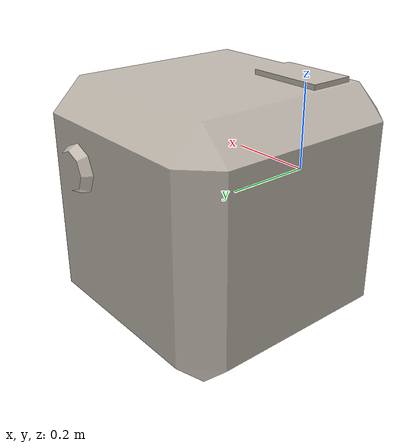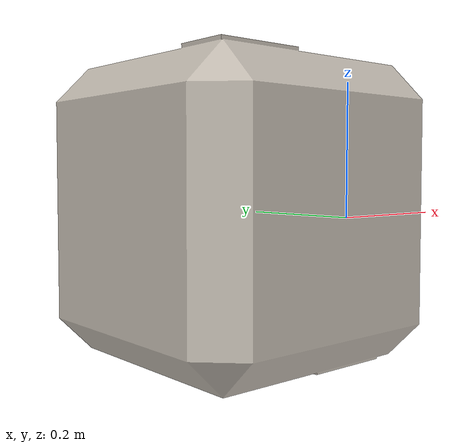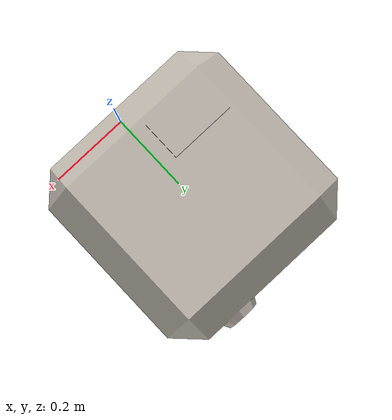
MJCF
<mujoco model="cargo_B">
  <default>
    <default class="visual">
      <geom group="2" type="mesh" contype="0" conaffinity="0" />
    </default>
    <default class="collision">
      <geom group="3" type="mesh" />
    </default>
  </default>
  <asset>
    <texture type="2d" name="cargo_B_spacebits_texture" file="spacebits_texture.png" />
    <material name="cargo_B_spacebits_texture" texture="cargo_B_spacebits_texture" specular="0.50196078" shininess="0.15999998099999999" />
    <mesh file="cargo_B.obj" name="cargo_B_cargo_B" />
  </asset>
  <worldbody>
    <body name="cargo_B">
      <geom material="cargo_B_spacebits_texture" mesh="cargo_B_cargo_B" class="visual" />
      <geom mesh="cargo_B_cargo_B" class="collision" />
    </body>
  </worldbody>
</mujoco>
